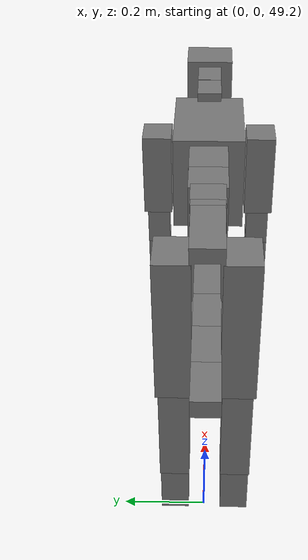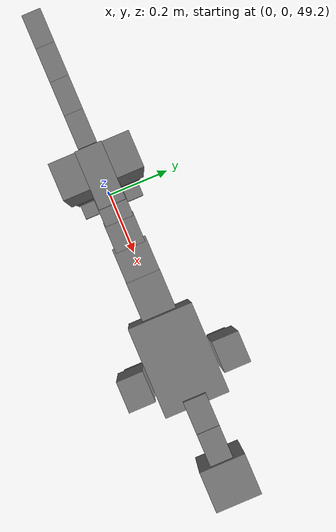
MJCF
<mujoco model="dog">

    <default>
        <joint armature="0.02" stiffness="1" damping="0.2" limited="true"/>
        <geom condim="3" friction="1 0.05 0.05" margin="0.01"/>
        <motor ctrllimited="true" ctrlrange="-1.0 1.0" forcelimited="true" gear="50"/>
    </default>

    <compiler inertiafromgeom="true" angle="radian"/>

    <option timestep="0.016" iterations="50" tolerance="1e-10" solver="Newton" jacobian="dense" cone="pyramidal"/>

    <size nconmax="20000" njmax="60000" nstack="5000000"/>
    <visual>
        <map force="0.1" zfar="30"/>
        <rgba haze="0.15 0.25 0.35 1"/>
        <quality shadowsize="2048"/>
        <global offwidth="800" offheight="800"/>
    </visual>

    <asset>
        <texture type="skybox" builtin="gradient" rgb1="0.3 0.5 0.7" rgb2="0 0 0" width="512" height="512"/>
        <texture name="texplane" type="2d" builtin="checker" rgb1=".2 .3 .4" rgb2=".1 0.15 0.2" width="512" height="512"
                 mark="cross" markrgb=".8 .8 .8"/>
        <texture name="texgeom" type="cube" builtin="flat" mark="cross" width="127" height="1278" rgb1="0.8 0.6 0.4"
                 rgb2="0.8 0.6 0.4" markrgb="1 1 1" random="0.01"/>

        <material name="matplane" reflectance="0.3" texture="texplane" texrepeat="1 1" texuniform="true"/>
        <material name="matgeom" texture="texgeom" texuniform="true" rgba="0.8 0.6 .4 1"/>
    </asset>

    <worldbody>
        <geom name="floor" pos="0 0 0" size="0 0 .25" type="plane" material="matplane" condim="3"/>

        <light directional="false" diffuse=".2 .2 .2" specular="0 0 0" pos="0 0 5" dir="0 0 -1" castshadow="false"/>
        <light mode="targetbodycom" target="torso" directional="false" diffuse=".8 .8 .8" specular="0.3 0.3 0.3"
               pos="0 0 4.0" dir="0 0 -1"/>

        <body name="root" pos="0 0 50">
            <freejoint name="root_1"/>
            <geom type="box" pos="0 0 -0.02" size="0.0774  0.0358  0.063" density="2030"/>

            <body name="spine1" pos="0.054 0 0">
                <joint name="spine1_y" axis="0 1 0" range="0 0.7" limited="true"/>
                <geom type="box" pos="0.02375 0 -0.03" size="0.04375  0.0375  0.05985" density="2030"/>

                <body name="spine2" pos="0.0612 0 0">
                    <joint name="spine2_y" axis="0 1 0" range="-0.15 0.15" limited="true"/>
                    <geom type="box" pos="0.03555  0  -0.04" size="0.04055  0.039  0.06615" density="2030"/>

                    <body name="spine3" pos="0.0730 0 0">
                        <joint name="spine3_y" axis="0 1 0" range="-0.15 0.15" limited="true"/>
                        <geom type="box" pos="0.03555  0  -0.057" size="0.04555  0.0445  0.081" density="2030"/>

                        <body name="spine4" pos="0.0780 0 0">
                            <joint name="spine4_y" axis="0 1 0" range="-0.15 0.15" limited="true"/>
                            <geom type="box" pos="0.05265  0  -0.07" size="0.05265  0.045  0.09135" density="2030"/>

                            <body name="torso" pos="0.1082 0 0">
                                <joint name="torso_y" axis="0 1 0" range="-0.15 0.15" limited="true"/>
                                <geom type="box" pos="0.11925  0  -0.085" size="0.11925  0.085  0.11745"
                                      density="2030"/>

                                <body name="neck1" pos="0.2160  0   0.0180">
                                    <joint name="neck1_y" axis="0 1 0" range="-1.2  -1" limited="true"/>
                                    <geom type="box" pos="0.0423  0  0" size="0.0423  0.03  0.036" density="2325"/>

                                    <body name="neck2" pos="0.0853  0  0">
                                        <joint name="neck2_y" axis="0 1 0" range="0.1  0" limited="true"/>
                                        <geom type="box" pos="0.0423  0  0" size="0.0423  0.03  0.036" density="2325"/>

                                        <body name="head" pos="0.0853  0  0">
                                            <joint name="head_y" axis="0 1 0" range="-0.3  -0.2" limited="true"/>
                                            <geom type="box" pos="0.0531  0  -0.055" size="0.0531  0.06  0.1044"
                                                  density="4030"/>

                                        </body>
                                    </body>
                                </body>

                                <body name="front_shoulder" pos="0.156  0   -0.0480">
                                    <joint name="front_shoulder_y" axis="0 1 0" range="-1 1.5" limited="true"/>
                                    <geom type="box" pos="0 0.13 -0.0803" size="0.0421  0.0360  0.1069" density="1158"/>
                                    <geom type="box" pos="0 -0.13 -0.0803" size="0.0421  0.0360  0.1069"
                                          density="1158"/>

                                    <body name="front_elbow" pos="0  0  -0.1606">
                                        <joint name="front_elbow_y" axis="0 1 0" range="-2 0" limited="true"/>
                                        <geom type="box" pos="0 0.13 -0.0643" size="0.0276  0.0282  0.0643"
                                              density="1081"/>
                                        <geom type="box" pos="0 -0.13 -0.0643" size="0.0276  0.0282  0.0643"
                                              density="1081"/>

                                        <body name="front_wrist" pos="0  0  -0.1285">
                                            <joint name="front_wrist_y" axis="0 1 0" range="-0.2 0" limited="true"/>
                                            <geom type="box" pos="0 0.13 -0.0542" size="0.0254  0.0282  0.0674"
                                                  density="1664"/>
                                            <geom type="box" pos="0 -0.13 -0.0542" size="0.0254  0.0282  0.0674"
                                                  density="1664"/>

                                            <body name="front_finger_end" pos="0  0  -0.1084">
                                                <joint name="front_finger_y" axis="0 1 0" range="-0.4 1"
                                                       limited="true"/>
                                                <geom type="box" pos="0.0256  0.13  -0.0061"
                                                      size="0.0470  0.0256  0.0211" density="1515"/>
                                                <geom type="box" pos="0.0256  -0.13  -0.0061"
                                                      size="0.0470  0.0256  0.0211" density="1515"/>

                                            </body>

                                        </body>
                                    </body>
                                </body>

                            </body>
                        </body>
                    </body>
                </body>
            </body>

            <body name="back_hip" pos="-0.03 0 -0.018">
                <joint name="back_hip_y" axis="0 1 0" range="-1.5 0.3" limited="true"/>
                <geom type="box" pos="0 0.07 -0.1527" size="0.0496  0.0389  0.1755" density="1154"/>
                <geom type="box" pos="0 -0.07 -0.1527" size="0.0496  0.0389  0.1755" density="1154"/>

                <body name="back_knee" pos="0  0  -0.3054">
                    <joint name="back_knee_y" axis="0 1 0" range="0 2.8" limited="true"/>
                    <geom type="box" pos="0 0.07 -0.1357" size="0.0346  0.0341  0.1512" density="1227"/>
                    <geom type="box" pos="0 -0.07 -0.1357" size="0.0346  0.0341  0.1512" density="1227"/>

                    <body name="back_ankle" pos="0  0  -0.2714">
                        <joint name="back_ankle_y" axis="0 1 0" range="-2.2 0" limited="true"/>
                        <geom type="box" pos="0 0.07 -0.0632" size="0.0322  0.0322  0.0745" density="1284"/>
                        <geom type="box" pos="0 -0.07 -0.0632" size="0.0322  0.0322  0.0745" density="1284"/>

                        <body name="back_toe_end" pos="0  0  -0.1264">
                            <joint name="back_toe_y" axis="0 1 0" range="-0.4 1" limited="true"/>
                            <geom type="box" pos="0.0272  0.07  -0.0009" size="0.0499  0.0272  0.0159" density="1515"/>
                            <geom type="box" pos="0.0272  -0.07  -0.0009" size="0.0499  0.0272  0.0159" density="1515"/>

                        </body>
                    </body>
                </body>
            </body>

            <body name="tail1" pos="-0.074 0 -0.006">
                <joint name="tail1_y" axis="0 1 0" range="-0.2 0.2" limited="true"/>
                <geom type="box" pos="-0.0536  0  0" size="0.045  0.025  0.0175" density="1587"/>

                <body name="tail2" pos="-0.09 0 0">
                    <joint name="tail2_y" axis="0 1 0" range="-0.2 0.2" limited="true"/>
                    <geom type="box" pos="-0.0536  0  0" size="0.045  0.025  0.0175" density="1587"/>

                    <body name="tail3" pos="-0.09 0 0">
                        <joint name="tail3_y" axis="0 1 0" range="-0.2 0.2" limited="true"/>
                        <geom type="box" pos="-0.0536  0  0" size="0.045  0.025  0.0175" density="1587"/>

                        <body name="tail4" pos="-0.09 0 0">
                            <joint name="tail4_y" axis="0 1 0" range="-0.2 0.2" limited="true"/>
                            <geom type="box" pos="-0.0536  0  0" size="0.045  0.025  0.0175" density="1587"/>

                        </body>
                    </body>
                </body>
            </body>
        </body>
    </worldbody>

    <actuator>
        <motor joint="spine1_y" forcerange="-150 150     "/>
        <motor joint="spine2_y" forcerange="-150 150     "/>
        <motor joint="spine3_y" forcerange="-150 150     "/>
        <motor joint="spine4_y" forcerange="-150 150     "/>
        <motor joint="torso_y" forcerange="-150 150     "/>
        <motor joint="neck1_y" forcerange="-100 100       "/>
        <motor joint="neck2_y" forcerange="-100 100       "/>
        <motor joint="head_y" forcerange="-150 150       "/>
        <motor joint="front_shoulder_y" forcerange="-150.85 189.26"/>
        <motor joint="front_elbow_y" forcerange="-172.60 132.73"/>
        <motor joint="front_wrist_y" forcerange="-146.62 78.89"/>
        <motor joint="front_finger_y" forcerange="-63.62 33.14"/>
        <motor joint="back_hip_y" forcerange="-376.76 341.43"/>
        <motor joint="back_knee_y" forcerange="-308.24 387.64"/>
        <motor joint="back_angle_y" forcerange="-214.23 200.82"/>
        <motor joint="back_toe_y" forcerange="-26.33 111.59"/>
        <motor joint="tail1_y" forcerange="-50 50     "/>
        <motor joint="tail2_y" forcerange="-50 50     "/>
        <motor joint="tail3_y" forcerange="-50 50     "/>
        <motor joint="tail4_y" forcerange="-50 50     "/>
    </actuator>
</mujoco>
